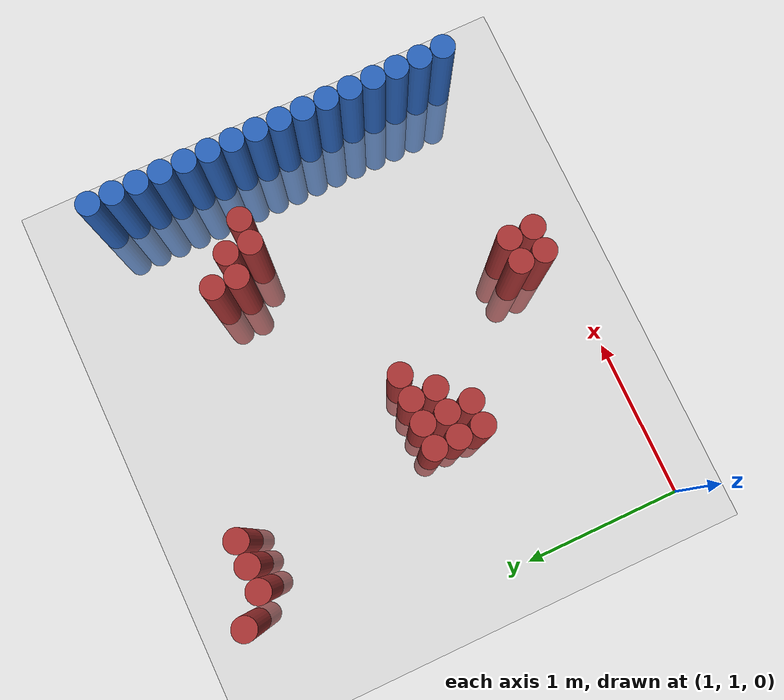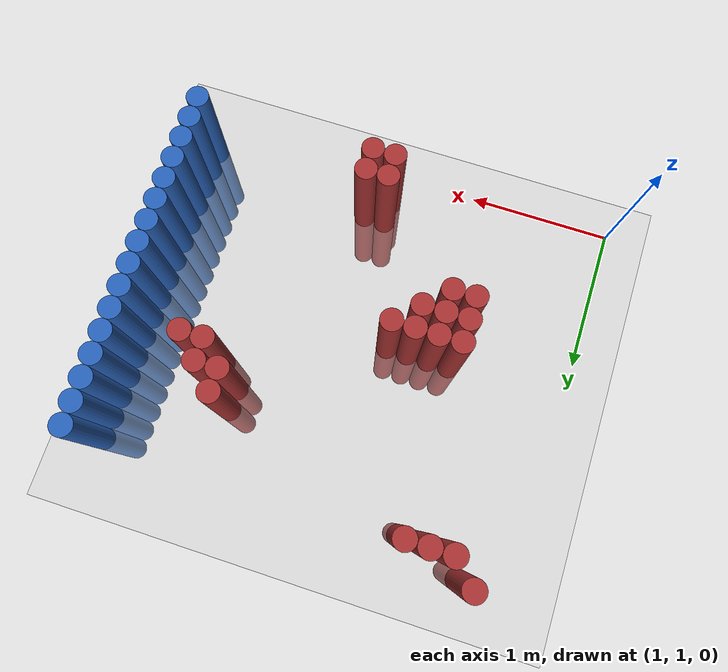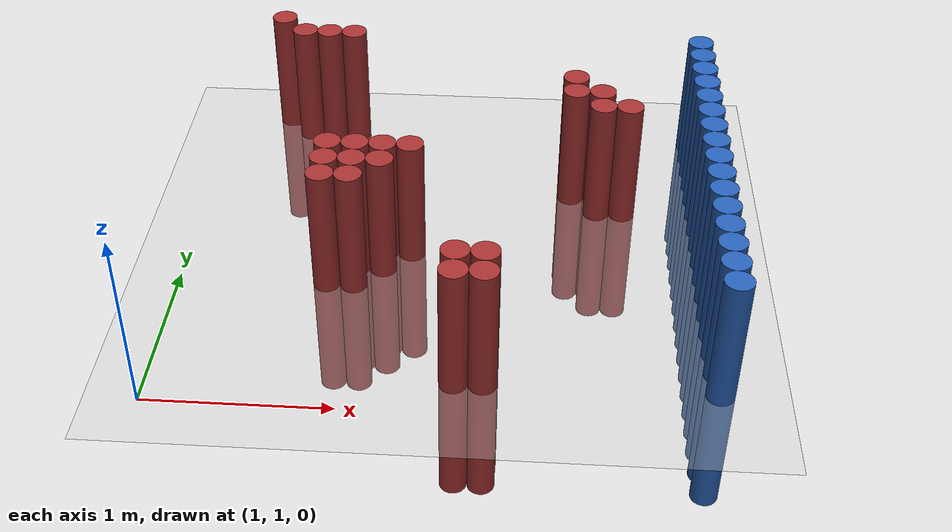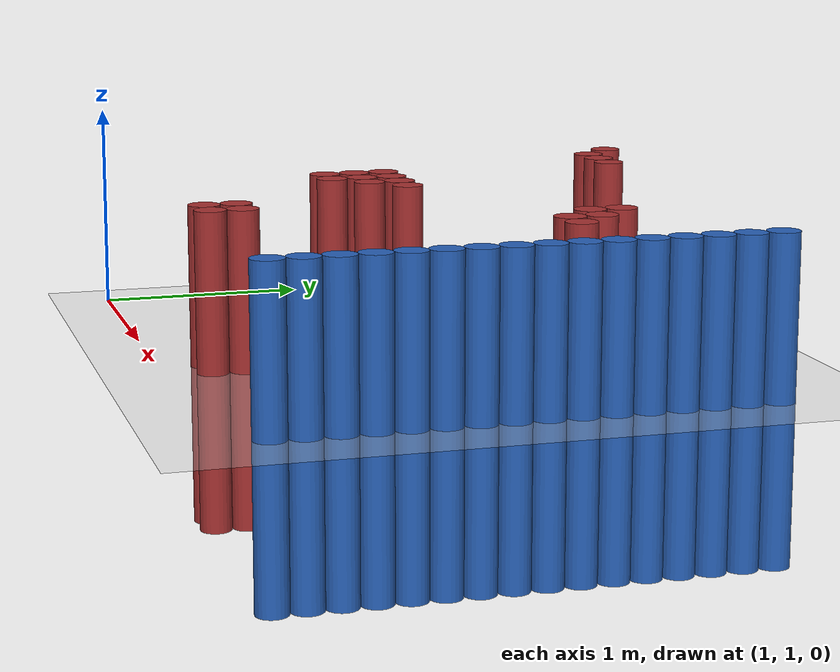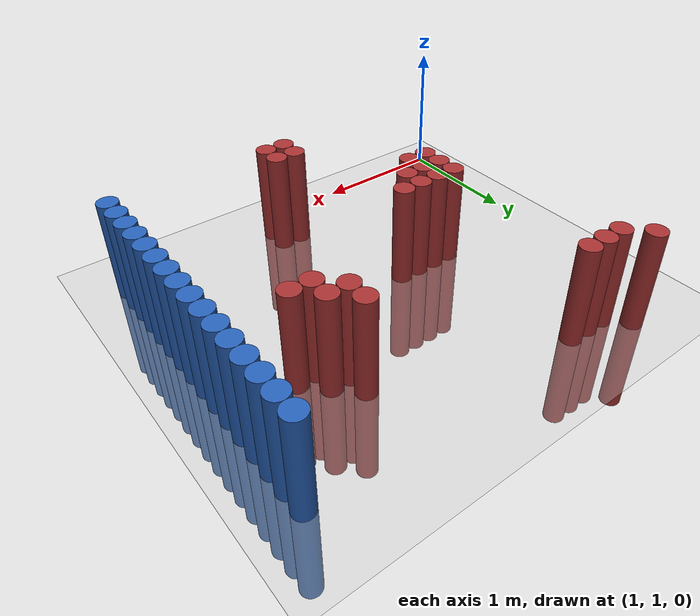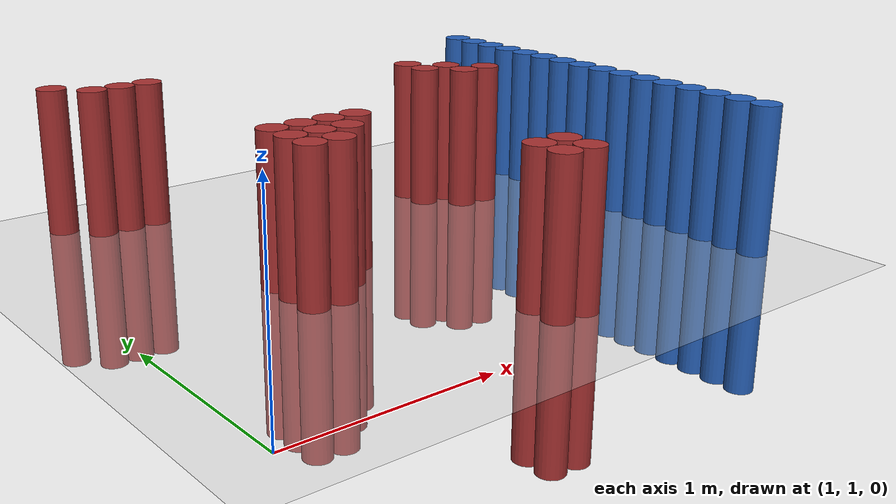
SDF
<sdf version="1.6">
 <world name="default">
  <model name="ground_plane">
   <static>1</static>
   <link name="link">
    <collision name="collision">
     <geometry><plane><normal>0 0 1</normal><size>100 100</size></plane></geometry>
     <surface><friction><ode><mu>100</mu><mu2>50</mu2></ode></friction></surface>
    </collision>
    <visual name="visual">
     <cast_shadows>0</cast_shadows>
     <geometry><plane><normal>0 0 1</normal><size>100 100</size></plane></geometry>
     <material>
      <script><uri>file://media/materials/scripts/gazebo.material</uri><name>Gazebo/Grey</name></script>
     </material>
    </visual>
   </link>
  </model>
  <model name="unit_cylinder_132">
   <static>1</static>
   <pose>3.925000 1.375000 0.000000 0.000000 0.000000 0.000000</pose>
   <link name="link">
    <inertial>
     <mass>1</mass>
     <inertia><ixx>0.145833</ixx><ixy>0</ixy><ixz>0</ixz><iyy>0.145833</iyy><iyz>0</iyz><izz>0.125</izz></inertia>
    </inertial>
    <collision name="collision">
     <geometry><cylinder><radius>0.075000</radius><length>1.5</length></cylinder></geometry>
    </collision>
    <visual name="visual">
     <geometry><cylinder><radius>0.075000</radius><length>1.5</length></cylinder></geometry>
     <material>
      <ambient>0.152000 0.379000 0.720000 1</ambient>
      <diffuse>0.152000 0.379000 0.720000 1</diffuse>
     </material>
     <material>
      <script><name>Gazebo/Grey</name><uri>file://media/materials/scripts/gazebo.material</uri></script>
     </material>
    </visual>
   </link>
  </model>
  <model name="unit_cylinder_134">
   <static>1</static>
   <pose>3.925000 1.525000 0.000000 0.000000 0.000000 0.000000</pose>
   <link name="link">
    <inertial>
     <mass>1</mass>
     <inertia><ixx>0.145833</ixx><ixy>0</ixy><ixz>0</ixz><iyy>0.145833</iyy><iyz>0</iyz><izz>0.125</izz></inertia>
    </inertial>
    <collision name="collision">
     <geometry><cylinder><radius>0.075000</radius><length>1.5</length></cylinder></geometry>
    </collision>
    <visual name="visual">
     <geometry><cylinder><radius>0.075000</radius><length>1.5</length></cylinder></geometry>
     <material>
      <ambient>0.152000 0.379000 0.720000 1</ambient>
      <diffuse>0.152000 0.379000 0.720000 1</diffuse>
     </material>
     <material>
      <script><name>Gazebo/Grey</name><uri>file://media/materials/scripts/gazebo.material</uri></script>
     </material>
    </visual>
   </link>
  </model>
  <model name="unit_cylinder_136">
   <static>1</static>
   <pose>3.925000 1.675000 0.000000 0.000000 0.000000 0.000000</pose>
   <link name="link">
    <inertial>
     <mass>1</mass>
     <inertia><ixx>0.145833</ixx><ixy>0</ixy><ixz>0</ixz><iyy>0.145833</iyy><iyz>0</iyz><izz>0.125</izz></inertia>
    </inertial>
    <collision name="collision">
     <geometry><cylinder><radius>0.075000</radius><length>1.5</length></cylinder></geometry>
    </collision>
    <visual name="visual">
     <geometry><cylinder><radius>0.075000</radius><length>1.5</length></cylinder></geometry>
     <material>
      <ambient>0.152000 0.379000 0.720000 1</ambient>
      <diffuse>0.152000 0.379000 0.720000 1</diffuse>
     </material>
     <material>
      <script><name>Gazebo/Grey</name><uri>file://media/materials/scripts/gazebo.material</uri></script>
     </material>
    </visual>
   </link>
  </model>
  <model name="unit_cylinder_138">
   <static>1</static>
   <pose>3.925000 1.825000 0.000000 0.000000 0.000000 0.000000</pose>
   <link name="link">
    <inertial>
     <mass>1</mass>
     <inertia><ixx>0.145833</ixx><ixy>0</ixy><ixz>0</ixz><iyy>0.145833</iyy><iyz>0</iyz><izz>0.125</izz></inertia>
    </inertial>
    <collision name="collision">
     <geometry><cylinder><radius>0.075000</radius><length>1.5</length></cylinder></geometry>
    </collision>
    <visual name="visual">
     <geometry><cylinder><radius>0.075000</radius><length>1.5</length></cylinder></geometry>
     <material>
      <ambient>0.152000 0.379000 0.720000 1</ambient>
      <diffuse>0.152000 0.379000 0.720000 1</diffuse>
     </material>
     <material>
      <script><name>Gazebo/Grey</name><uri>file://media/materials/scripts/gazebo.material</uri></script>
     </material>
    </visual>
   </link>
  </model>
  <model name="unit_cylinder_140">
   <static>1</static>
   <pose>3.925000 1.975000 0.000000 0.000000 0.000000 0.000000</pose>
   <link name="link">
    <inertial>
     <mass>1</mass>
     <inertia><ixx>0.145833</ixx><ixy>0</ixy><ixz>0</ixz><iyy>0.145833</iyy><iyz>0</iyz><izz>0.125</izz></inertia>
    </inertial>
    <collision name="collision">
     <geometry><cylinder><radius>0.075000</radius><length>1.5</length></cylinder></geometry>
    </collision>
    <visual name="visual">
     <geometry><cylinder><radius>0.075000</radius><length>1.5</length></cylinder></geometry>
     <material>
      <ambient>0.152000 0.379000 0.720000 1</ambient>
      <diffuse>0.152000 0.379000 0.720000 1</diffuse>
     </material>
     <material>
      <script><name>Gazebo/Grey</name><uri>file://media/materials/scripts/gazebo.material</uri></script>
     </material>
    </visual>
   </link>
  </model>
  <model name="unit_cylinder_142">
   <static>1</static>
   <pose>3.925000 2.125000 0.000000 0.000000 0.000000 0.000000</pose>
   <link name="link">
    <inertial>
     <mass>1</mass>
     <inertia><ixx>0.145833</ixx><ixy>0</ixy><ixz>0</ixz><iyy>0.145833</iyy><iyz>0</iyz><izz>0.125</izz></inertia>
    </inertial>
    <collision name="collision">
     <geometry><cylinder><radius>0.075000</radius><length>1.5</length></cylinder></geometry>
    </collision>
    <visual name="visual">
     <geometry><cylinder><radius>0.075000</radius><length>1.5</length></cylinder></geometry>
     <material>
      <ambient>0.152000 0.379000 0.720000 1</ambient>
      <diffuse>0.152000 0.379000 0.720000 1</diffuse>
     </material>
     <material>
      <script><name>Gazebo/Grey</name><uri>file://media/materials/scripts/gazebo.material</uri></script>
     </material>
    </visual>
   </link>
  </model>
  <model name="unit_cylinder_144">
   <static>1</static>
   <pose>3.925000 2.275000 0.000000 0.000000 0.000000 0.000000</pose>
   <link name="link">
    <inertial>
     <mass>1</mass>
     <inertia><ixx>0.145833</ixx><ixy>0</ixy><ixz>0</ixz><iyy>0.145833</iyy><iyz>0</iyz><izz>0.125</izz></inertia>
    </inertial>
    <collision name="collision">
     <geometry><cylinder><radius>0.075000</radius><length>1.5</length></cylinder></geometry>
    </collision>
    <visual name="visual">
     <geometry><cylinder><radius>0.075000</radius><length>1.5</length></cylinder></geometry>
     <material>
      <ambient>0.152000 0.379000 0.720000 1</ambient>
      <diffuse>0.152000 0.379000 0.720000 1</diffuse>
     </material>
     <material>
      <script><name>Gazebo/Grey</name><uri>file://media/materials/scripts/gazebo.material</uri></script>
     </material>
    </visual>
   </link>
  </model>
  <model name="unit_cylinder_146">
   <static>1</static>
   <pose>3.925000 2.425000 0.000000 0.000000 0.000000 0.000000</pose>
   <link name="link">
    <inertial>
     <mass>1</mass>
     <inertia><ixx>0.145833</ixx><ixy>0</ixy><ixz>0</ixz><iyy>0.145833</iyy><iyz>0</iyz><izz>0.125</izz></inertia>
    </inertial>
    <collision name="collision">
     <geometry><cylinder><radius>0.075000</radius><length>1.5</length></cylinder></geometry>
    </collision>
    <visual name="visual">
     <geometry><cylinder><radius>0.075000</radius><length>1.5</length></cylinder></geometry>
     <material>
      <ambient>0.152000 0.379000 0.720000 1</ambient>
      <diffuse>0.152000 0.379000 0.720000 1</diffuse>
     </material>
     <material>
      <script><name>Gazebo/Grey</name><uri>file://media/materials/scripts/gazebo.material</uri></script>
     </material>
    </visual>
   </link>
  </model>
  <model name="unit_cylinder_148">
   <static>1</static>
   <pose>3.925000 2.575000 0.000000 0.000000 0.000000 0.000000</pose>
   <link name="link">
    <inertial>
     <mass>1</mass>
     <inertia><ixx>0.145833</ixx><ixy>0</ixy><ixz>0</ixz><iyy>0.145833</iyy><iyz>0</iyz><izz>0.125</izz></inertia>
    </inertial>
    <collision name="collision">
     <geometry><cylinder><radius>0.075000</radius><length>1.5</length></cylinder></geometry>
    </collision>
    <visual name="visual">
     <geometry><cylinder><radius>0.075000</radius><length>1.5</length></cylinder></geometry>
     <material>
      <ambient>0.152000 0.379000 0.720000 1</ambient>
      <diffuse>0.152000 0.379000 0.720000 1</diffuse>
     </material>
     <material>
      <script><name>Gazebo/Grey</name><uri>file://media/materials/scripts/gazebo.material</uri></script>
     </material>
    </visual>
   </link>
  </model>
  <model name="unit_cylinder_150">
   <static>1</static>
   <pose>3.925000 2.725000 0.000000 0.000000 0.000000 0.000000</pose>
   <link name="link">
    <inertial>
     <mass>1</mass>
     <inertia><ixx>0.145833</ixx><ixy>0</ixy><ixz>0</ixz><iyy>0.145833</iyy><iyz>0</iyz><izz>0.125</izz></inertia>
    </inertial>
    <collision name="collision">
     <geometry><cylinder><radius>0.075000</radius><length>1.5</length></cylinder></geometry>
    </collision>
    <visual name="visual">
     <geometry><cylinder><radius>0.075000</radius><length>1.5</length></cylinder></geometry>
     <material>
      <ambient>0.152000 0.379000 0.720000 1</ambient>
      <diffuse>0.152000 0.379000 0.720000 1</diffuse>
     </material>
     <material>
      <script><name>Gazebo/Grey</name><uri>file://media/materials/scripts/gazebo.material</uri></script>
     </material>
    </visual>
   </link>
  </model>
  <model name="unit_cylinder_152">
   <static>1</static>
   <pose>3.925000 2.875000 0.000000 0.000000 0.000000 0.000000</pose>
   <link name="link">
    <inertial>
     <mass>1</mass>
     <inertia><ixx>0.145833</ixx><ixy>0</ixy><ixz>0</ixz><iyy>0.145833</iyy><iyz>0</iyz><izz>0.125</izz></inertia>
    </inertial>
    <collision name="collision">
     <geometry><cylinder><radius>0.075000</radius><length>1.5</length></cylinder></geometry>
    </collision>
    <visual name="visual">
     <geometry><cylinder><radius>0.075000</radius><length>1.5</length></cylinder></geometry>
     <material>
      <ambient>0.152000 0.379000 0.720000 1</ambient>
      <diffuse>0.152000 0.379000 0.720000 1</diffuse>
     </material>
     <material>
      <script><name>Gazebo/Grey</name><uri>file://media/materials/scripts/gazebo.material</uri></script>
     </material>
    </visual>
   </link>
  </model>
  <model name="unit_cylinder_154">
   <static>1</static>
   <pose>3.925000 3.025000 0.000000 0.000000 0.000000 0.000000</pose>
   <link name="link">
    <inertial>
     <mass>1</mass>
     <inertia><ixx>0.145833</ixx><ixy>0</ixy><ixz>0</ixz><iyy>0.145833</iyy><iyz>0</iyz><izz>0.125</izz></inertia>
    </inertial>
    <collision name="collision">
     <geometry><cylinder><radius>0.075000</radius><length>1.5</length></cylinder></geometry>
    </collision>
    <visual name="visual">
     <geometry><cylinder><radius>0.075000</radius><length>1.5</length></cylinder></geometry>
     <material>
      <ambient>0.152000 0.379000 0.720000 1</ambient>
      <diffuse>0.152000 0.379000 0.720000 1</diffuse>
     </material>
     <material>
      <script><name>Gazebo/Grey</name><uri>file://media/materials/scripts/gazebo.material</uri></script>
     </material>
    </visual>
   </link>
  </model>
  <model name="unit_cylinder_156">
   <static>1</static>
   <pose>3.925000 3.175000 0.000000 0.000000 0.000000 0.000000</pose>
   <link name="link">
    <inertial>
     <mass>1</mass>
     <inertia><ixx>0.145833</ixx><ixy>0</ixy><ixz>0</ixz><iyy>0.145833</iyy><iyz>0</iyz><izz>0.125</izz></inertia>
    </inertial>
    <collision name="collision">
     <geometry><cylinder><radius>0.075000</radius><length>1.5</length></cylinder></geometry>
    </collision>
    <visual name="visual">
     <geometry><cylinder><radius>0.075000</radius><length>1.5</length></cylinder></geometry>
     <material>
      <ambient>0.152000 0.379000 0.720000 1</ambient>
      <diffuse>0.152000 0.379000 0.720000 1</diffuse>
     </material>
     <material>
      <script><name>Gazebo/Grey</name><uri>file://media/materials/scripts/gazebo.material</uri></script>
     </material>
    </visual>
   </link>
  </model>
  <model name="unit_cylinder_158">
   <static>1</static>
   <pose>3.925000 3.325000 0.000000 0.000000 0.000000 0.000000</pose>
   <link name="link">
    <inertial>
     <mass>1</mass>
     <inertia><ixx>0.145833</ixx><ixy>0</ixy><ixz>0</ixz><iyy>0.145833</iyy><iyz>0</iyz><izz>0.125</izz></inertia>
    </inertial>
    <collision name="collision">
     <geometry><cylinder><radius>0.075000</radius><length>1.5</length></cylinder></geometry>
    </collision>
    <visual name="visual">
     <geometry><cylinder><radius>0.075000</radius><length>1.5</length></cylinder></geometry>
     <material>
      <ambient>0.152000 0.379000 0.720000 1</ambient>
      <diffuse>0.152000 0.379000 0.720000 1</diffuse>
     </material>
     <material>
      <script><name>Gazebo/Grey</name><uri>file://media/materials/scripts/gazebo.material</uri></script>
     </material>
    </visual>
   </link>
  </model>
  <model name="unit_cylinder_160">
   <static>1</static>
   <pose>3.925000 3.475000 0.000000 0.000000 0.000000 0.000000</pose>
   <link name="link">
    <inertial>
     <mass>1</mass>
     <inertia><ixx>0.145833</ixx><ixy>0</ixy><ixz>0</ixz><iyy>0.145833</iyy><iyz>0</iyz><izz>0.125</izz></inertia>
    </inertial>
    <collision name="collision">
     <geometry><cylinder><radius>0.075000</radius><length>1.5</length></cylinder></geometry>
    </collision>
    <visual name="visual">
     <geometry><cylinder><radius>0.075000</radius><length>1.5</length></cylinder></geometry>
     <material>
      <ambient>0.152000 0.379000 0.720000 1</ambient>
      <diffuse>0.152000 0.379000 0.720000 1</diffuse>
     </material>
     <material>
      <script><name>Gazebo/Grey</name><uri>file://media/materials/scripts/gazebo.material</uri></script>
     </material>
    </visual>
   </link>
  </model>
  <model name="unit_cylinder_420">
   <static>1</static>
   <pose>1.375000 3.625000 0.000000 0.000000 0.000000 0.000000</pose>
   <link name="link">
    <inertial>
     <mass>1</mass>
     <inertia><ixx>0.145833</ixx><ixy>0</ixy><ixz>0</ixz><iyy>0.145833</iyy><iyz>0</iyz><izz>0.125</izz></inertia>
    </inertial>
    <collision name="collision">
     <geometry><cylinder><radius>0.075000</radius><length>1.5</length></cylinder></geometry>
    </collision>
    <visual name="visual">
     <geometry><cylinder><radius>0.075000</radius><length>1.5</length></cylinder></geometry>
     <material>
      <ambient>0.648000 0.192000 0.192000 1</ambient>
      <diffuse>0.648000 0.192000 0.192000 1</diffuse>
     </material>
     <material>
      <script><name>Gazebo/Grey</name><uri>file://media/materials/scripts/gazebo.material</uri></script>
     </material>
    </visual>
   </link>
  </model>
  <model name="unit_cylinder_423">
   <static>1</static>
   <pose>1.525000 3.475000 0.000000 0.000000 0.000000 0.000000</pose>
   <link name="link">
    <inertial>
     <mass>1</mass>
     <inertia><ixx>0.145833</ixx><ixy>0</ixy><ixz>0</ixz><iyy>0.145833</iyy><iyz>0</iyz><izz>0.125</izz></inertia>
    </inertial>
    <collision name="collision">
     <geometry><cylinder><radius>0.075000</radius><length>1.5</length></cylinder></geometry>
    </collision>
    <visual name="visual">
     <geometry><cylinder><radius>0.075000</radius><length>1.5</length></cylinder></geometry>
     <material>
      <ambient>0.648000 0.192000 0.192000 1</ambient>
      <diffuse>0.648000 0.192000 0.192000 1</diffuse>
     </material>
     <material>
      <script><name>Gazebo/Grey</name><uri>file://media/materials/scripts/gazebo.material</uri></script>
     </material>
    </visual>
   </link>
  </model>
  <model name="unit_cylinder_426">
   <static>1</static>
   <pose>1.675000 3.475000 0.000000 0.000000 0.000000 0.000000</pose>
   <link name="link">
    <inertial>
     <mass>1</mass>
     <inertia><ixx>0.145833</ixx><ixy>0</ixy><ixz>0</ixz><iyy>0.145833</iyy><iyz>0</iyz><izz>0.125</izz></inertia>
    </inertial>
    <collision name="collision">
     <geometry><cylinder><radius>0.075000</radius><length>1.5</length></cylinder></geometry>
    </collision>
    <visual name="visual">
     <geometry><cylinder><radius>0.075000</radius><length>1.5</length></cylinder></geometry>
     <material>
      <ambient>0.648000 0.192000 0.192000 1</ambient>
      <diffuse>0.648000 0.192000 0.192000 1</diffuse>
     </material>
     <material>
      <script><name>Gazebo/Grey</name><uri>file://media/materials/scripts/gazebo.material</uri></script>
     </material>
    </visual>
   </link>
  </model>
  <model name="unit_cylinder_429">
   <static>1</static>
   <pose>1.825000 1.975000 0.000000 0.000000 0.000000 0.000000</pose>
   <link name="link">
    <inertial>
     <mass>1</mass>
     <inertia><ixx>0.145833</ixx><ixy>0</ixy><ixz>0</ixz><iyy>0.145833</iyy><iyz>0</iyz><izz>0.125</izz></inertia>
    </inertial>
    <collision name="collision">
     <geometry><cylinder><radius>0.075000</radius><length>1.5</length></cylinder></geometry>
    </collision>
    <visual name="visual">
     <geometry><cylinder><radius>0.075000</radius><length>1.5</length></cylinder></geometry>
     <material>
      <ambient>0.648000 0.192000 0.192000 1</ambient>
      <diffuse>0.648000 0.192000 0.192000 1</diffuse>
     </material>
     <material>
      <script><name>Gazebo/Grey</name><uri>file://media/materials/scripts/gazebo.material</uri></script>
     </material>
    </visual>
   </link>
  </model>
  <model name="unit_cylinder_430">
   <static>1</static>
   <pose>1.825000 2.125000 0.000000 0.000000 0.000000 0.000000</pose>
   <link name="link">
    <inertial>
     <mass>1</mass>
     <inertia><ixx>0.145833</ixx><ixy>0</ixy><ixz>0</ixz><iyy>0.145833</iyy><iyz>0</iyz><izz>0.125</izz></inertia>
    </inertial>
    <collision name="collision">
     <geometry><cylinder><radius>0.075000</radius><length>1.5</length></cylinder></geometry>
    </collision>
    <visual name="visual">
     <geometry><cylinder><radius>0.075000</radius><length>1.5</length></cylinder></geometry>
     <material>
      <ambient>0.648000 0.192000 0.192000 1</ambient>
      <diffuse>0.648000 0.192000 0.192000 1</diffuse>
     </material>
     <material>
      <script><name>Gazebo/Grey</name><uri>file://media/materials/scripts/gazebo.material</uri></script>
     </material>
    </visual>
   </link>
  </model>
  <model name="unit_cylinder_431">
   <static>1</static>
   <pose>1.825000 2.275000 0.000000 0.000000 0.000000 0.000000</pose>
   <link name="link">
    <inertial>
     <mass>1</mass>
     <inertia><ixx>0.145833</ixx><ixy>0</ixy><ixz>0</ixz><iyy>0.145833</iyy><iyz>0</iyz><izz>0.125</izz></inertia>
    </inertial>
    <collision name="collision">
     <geometry><cylinder><radius>0.075000</radius><length>1.5</length></cylinder></geometry>
    </collision>
    <visual name="visual">
     <geometry><cylinder><radius>0.075000</radius><length>1.5</length></cylinder></geometry>
     <material>
      <ambient>0.648000 0.192000 0.192000 1</ambient>
      <diffuse>0.648000 0.192000 0.192000 1</diffuse>
     </material>
     <material>
      <script><name>Gazebo/Grey</name><uri>file://media/materials/scripts/gazebo.material</uri></script>
     </material>
    </visual>
   </link>
  </model>
  <model name="unit_cylinder_432">
   <static>1</static>
   <pose>1.825000 3.475000 0.000000 0.000000 0.000000 0.000000</pose>
   <link name="link">
    <inertial>
     <mass>1</mass>
     <inertia><ixx>0.145833</ixx><ixy>0</ixy><ixz>0</ixz><iyy>0.145833</iyy><iyz>0</iyz><izz>0.125</izz></inertia>
    </inertial>
    <collision name="collision">
     <geometry><cylinder><radius>0.075000</radius><length>1.5</length></cylinder></geometry>
    </collision>
    <visual name="visual">
     <geometry><cylinder><radius>0.075000</radius><length>1.5</length></cylinder></geometry>
     <material>
      <ambient>0.648000 0.192000 0.192000 1</ambient>
      <diffuse>0.648000 0.192000 0.192000 1</diffuse>
     </material>
     <material>
      <script><name>Gazebo/Grey</name><uri>file://media/materials/scripts/gazebo.material</uri></script>
     </material>
    </visual>
   </link>
  </model>
  <model name="unit_cylinder_433">
   <static>1</static>
   <pose>1.975000 1.975000 0.000000 0.000000 0.000000 0.000000</pose>
   <link name="link">
    <inertial>
     <mass>1</mass>
     <inertia><ixx>0.145833</ixx><ixy>0</ixy><ixz>0</ixz><iyy>0.145833</iyy><iyz>0</iyz><izz>0.125</izz></inertia>
    </inertial>
    <collision name="collision">
     <geometry><cylinder><radius>0.075000</radius><length>1.5</length></cylinder></geometry>
    </collision>
    <visual name="visual">
     <geometry><cylinder><radius>0.075000</radius><length>1.5</length></cylinder></geometry>
     <material>
      <ambient>0.648000 0.192000 0.192000 1</ambient>
      <diffuse>0.648000 0.192000 0.192000 1</diffuse>
     </material>
     <material>
      <script><name>Gazebo/Grey</name><uri>file://media/materials/scripts/gazebo.material</uri></script>
     </material>
    </visual>
   </link>
  </model>
  <model name="unit_cylinder_434">
   <static>1</static>
   <pose>1.975000 2.125000 0.000000 0.000000 0.000000 0.000000</pose>
   <link name="link">
    <inertial>
     <mass>1</mass>
     <inertia><ixx>0.145833</ixx><ixy>0</ixy><ixz>0</ixz><iyy>0.145833</iyy><iyz>0</iyz><izz>0.125</izz></inertia>
    </inertial>
    <collision name="collision">
     <geometry><cylinder><radius>0.075000</radius><length>1.5</length></cylinder></geometry>
    </collision>
    <visual name="visual">
     <geometry><cylinder><radius>0.075000</radius><length>1.5</length></cylinder></geometry>
     <material>
      <ambient>0.648000 0.192000 0.192000 1</ambient>
      <diffuse>0.648000 0.192000 0.192000 1</diffuse>
     </material>
     <material>
      <script><name>Gazebo/Grey</name><uri>file://media/materials/scripts/gazebo.material</uri></script>
     </material>
    </visual>
   </link>
  </model>
  <model name="unit_cylinder_435">
   <static>1</static>
   <pose>1.975000 2.275000 0.000000 0.000000 0.000000 0.000000</pose>
   <link name="link">
    <inertial>
     <mass>1</mass>
     <inertia><ixx>0.145833</ixx><ixy>0</ixy><ixz>0</ixz><iyy>0.145833</iyy><iyz>0</iyz><izz>0.125</izz></inertia>
    </inertial>
    <collision name="collision">
     <geometry><cylinder><radius>0.075000</radius><length>1.5</length></cylinder></geometry>
    </collision>
    <visual name="visual">
     <geometry><cylinder><radius>0.075000</radius><length>1.5</length></cylinder></geometry>
     <material>
      <ambient>0.648000 0.192000 0.192000 1</ambient>
      <diffuse>0.648000 0.192000 0.192000 1</diffuse>
     </material>
     <material>
      <script><name>Gazebo/Grey</name><uri>file://media/materials/scripts/gazebo.material</uri></script>
     </material>
    </visual>
   </link>
  </model>
  <model name="unit_cylinder_436">
   <static>1</static>
   <pose>2.125000 2.125000 0.000000 0.000000 0.000000 0.000000</pose>
   <link name="link">
    <inertial>
     <mass>1</mass>
     <inertia><ixx>0.145833</ixx><ixy>0</ixy><ixz>0</ixz><iyy>0.145833</iyy><iyz>0</iyz><izz>0.125</izz></inertia>
    </inertial>
    <collision name="collision">
     <geometry><cylinder><radius>0.075000</radius><length>1.5</length></cylinder></geometry>
    </collision>
    <visual name="visual">
     <geometry><cylinder><radius>0.075000</radius><length>1.5</length></cylinder></geometry>
     <material>
      <ambient>0.648000 0.192000 0.192000 1</ambient>
      <diffuse>0.648000 0.192000 0.192000 1</diffuse>
     </material>
     <material>
      <script><name>Gazebo/Grey</name><uri>file://media/materials/scripts/gazebo.material</uri></script>
     </material>
    </visual>
   </link>
  </model>
  <model name="unit_cylinder_437">
   <static>1</static>
   <pose>2.125000 2.275000 0.000000 0.000000 0.000000 0.000000</pose>
   <link name="link">
    <inertial>
     <mass>1</mass>
     <inertia><ixx>0.145833</ixx><ixy>0</ixy><ixz>0</ixz><iyy>0.145833</iyy><iyz>0</iyz><izz>0.125</izz></inertia>
    </inertial>
    <collision name="collision">
     <geometry><cylinder><radius>0.075000</radius><length>1.5</length></cylinder></geometry>
    </collision>
    <visual name="visual">
     <geometry><cylinder><radius>0.075000</radius><length>1.5</length></cylinder></geometry>
     <material>
      <ambient>0.648000 0.192000 0.192000 1</ambient>
      <diffuse>0.648000 0.192000 0.192000 1</diffuse>
     </material>
     <material>
      <script><name>Gazebo/Grey</name><uri>file://media/materials/scripts/gazebo.material</uri></script>
     </material>
    </visual>
   </link>
  </model>
  <model name="unit_cylinder_438">
   <static>1</static>
   <pose>2.275000 2.275000 0.000000 0.000000 0.000000 0.000000</pose>
   <link name="link">
    <inertial>
     <mass>1</mass>
     <inertia><ixx>0.145833</ixx><ixy>0</ixy><ixz>0</ixz><iyy>0.145833</iyy><iyz>0</iyz><izz>0.125</izz></inertia>
    </inertial>
    <collision name="collision">
     <geometry><cylinder><radius>0.075000</radius><length>1.5</length></cylinder></geometry>
    </collision>
    <visual name="visual">
     <geometry><cylinder><radius>0.075000</radius><length>1.5</length></cylinder></geometry>
     <material>
      <ambient>0.648000 0.192000 0.192000 1</ambient>
      <diffuse>0.648000 0.192000 0.192000 1</diffuse>
     </material>
     <material>
      <script><name>Gazebo/Grey</name><uri>file://media/materials/scripts/gazebo.material</uri></script>
     </material>
    </visual>
   </link>
  </model>
  <model name="unit_cylinder_441">
   <static>1</static>
   <pose>2.575000 1.225000 0.000000 0.000000 0.000000 0.000000</pose>
   <link name="link">
    <inertial>
     <mass>1</mass>
     <inertia><ixx>0.145833</ixx><ixy>0</ixy><ixz>0</ixz><iyy>0.145833</iyy><iyz>0</iyz><izz>0.125</izz></inertia>
    </inertial>
    <collision name="collision">
     <geometry><cylinder><radius>0.075000</radius><length>1.5</length></cylinder></geometry>
    </collision>
    <visual name="visual">
     <geometry><cylinder><radius>0.075000</radius><length>1.5</length></cylinder></geometry>
     <material>
      <ambient>0.648000 0.192000 0.192000 1</ambient>
      <diffuse>0.648000 0.192000 0.192000 1</diffuse>
     </material>
     <material>
      <script><name>Gazebo/Grey</name><uri>file://media/materials/scripts/gazebo.material</uri></script>
     </material>
    </visual>
   </link>
  </model>
  <model name="unit_cylinder_442">
   <static>1</static>
   <pose>2.575000 1.375000 0.000000 0.000000 0.000000 0.000000</pose>
   <link name="link">
    <inertial>
     <mass>1</mass>
     <inertia><ixx>0.145833</ixx><ixy>0</ixy><ixz>0</ixz><iyy>0.145833</iyy><iyz>0</iyz><izz>0.125</izz></inertia>
    </inertial>
    <collision name="collision">
     <geometry><cylinder><radius>0.075000</radius><length>1.5</length></cylinder></geometry>
    </collision>
    <visual name="visual">
     <geometry><cylinder><radius>0.075000</radius><length>1.5</length></cylinder></geometry>
     <material>
      <ambient>0.648000 0.192000 0.192000 1</ambient>
      <diffuse>0.648000 0.192000 0.192000 1</diffuse>
     </material>
     <material>
      <script><name>Gazebo/Grey</name><uri>file://media/materials/scripts/gazebo.material</uri></script>
     </material>
    </visual>
   </link>
  </model>
  <model name="unit_cylinder_444">
   <static>1</static>
   <pose>2.725000 1.225000 0.000000 0.000000 0.000000 0.000000</pose>
   <link name="link">
    <inertial>
     <mass>1</mass>
     <inertia><ixx>0.145833</ixx><ixy>0</ixy><ixz>0</ixz><iyy>0.145833</iyy><iyz>0</iyz><izz>0.125</izz></inertia>
    </inertial>
    <collision name="collision">
     <geometry><cylinder><radius>0.075000</radius><length>1.5</length></cylinder></geometry>
    </collision>
    <visual name="visual">
     <geometry><cylinder><radius>0.075000</radius><length>1.5</length></cylinder></geometry>
     <material>
      <ambient>0.648000 0.192000 0.192000 1</ambient>
      <diffuse>0.648000 0.192000 0.192000 1</diffuse>
     </material>
     <material>
      <script><name>Gazebo/Grey</name><uri>file://media/materials/scripts/gazebo.material</uri></script>
     </material>
    </visual>
   </link>
  </model>
  <model name="unit_cylinder_445">
   <static>1</static>
   <pose>2.725000 1.375000 0.000000 0.000000 0.000000 0.000000</pose>
   <link name="link">
    <inertial>
     <mass>1</mass>
     <inertia><ixx>0.145833</ixx><ixy>0</ixy><ixz>0</ixz><iyy>0.145833</iyy><iyz>0</iyz><izz>0.125</izz></inertia>
    </inertial>
    <collision name="collision">
     <geometry><cylinder><radius>0.075000</radius><length>1.5</length></cylinder></geometry>
    </collision>
    <visual name="visual">
     <geometry><cylinder><radius>0.075000</radius><length>1.5</length></cylinder></geometry>
     <material>
      <ambient>0.648000 0.192000 0.192000 1</ambient>
      <diffuse>0.648000 0.192000 0.192000 1</diffuse>
     </material>
     <material>
      <script><name>Gazebo/Grey</name><uri>file://media/materials/scripts/gazebo.material</uri></script>
     </material>
    </visual>
   </link>
  </model>
  <model name="unit_cylinder_459">
   <static>1</static>
   <pose>3.175000 2.875000 0.000000 0.000000 0.000000 0.000000</pose>
   <link name="link">
    <inertial>
     <mass>1</mass>
     <inertia><ixx>0.145833</ixx><ixy>0</ixy><ixz>0</ixz><iyy>0.145833</iyy><iyz>0</iyz><izz>0.125</izz></inertia>
    </inertial>
    <collision name="collision">
     <geometry><cylinder><radius>0.075000</radius><length>1.5</length></cylinder></geometry>
    </collision>
    <visual name="visual">
     <geometry><cylinder><radius>0.075000</radius><length>1.5</length></cylinder></geometry>
     <material>
      <ambient>0.648000 0.192000 0.192000 1</ambient>
      <diffuse>0.648000 0.192000 0.192000 1</diffuse>
     </material>
     <material>
      <script><name>Gazebo/Grey</name><uri>file://media/materials/scripts/gazebo.material</uri></script>
     </material>
    </visual>
   </link>
  </model>
  <model name="unit_cylinder_460">
   <static>1</static>
   <pose>3.175000 3.025000 0.000000 0.000000 0.000000 0.000000</pose>
   <link name="link">
    <inertial>
     <mass>1</mass>
     <inertia><ixx>0.145833</ixx><ixy>0</ixy><ixz>0</ixz><iyy>0.145833</iyy><iyz>0</iyz><izz>0.125</izz></inertia>
    </inertial>
    <collision name="collision">
     <geometry><cylinder><radius>0.075000</radius><length>1.5</length></cylinder></geometry>
    </collision>
    <visual name="visual">
     <geometry><cylinder><radius>0.075000</radius><length>1.5</length></cylinder></geometry>
     <material>
      <ambient>0.648000 0.192000 0.192000 1</ambient>
      <diffuse>0.648000 0.192000 0.192000 1</diffuse>
     </material>
     <material>
      <script><name>Gazebo/Grey</name><uri>file://media/materials/scripts/gazebo.material</uri></script>
     </material>
    </visual>
   </link>
  </model>
  <model name="unit_cylinder_464">
   <static>1</static>
   <pose>3.325000 2.725000 0.000000 0.000000 0.000000 0.000000</pose>
   <link name="link">
    <inertial>
     <mass>1</mass>
     <inertia><ixx>0.145833</ixx><ixy>0</ixy><ixz>0</ixz><iyy>0.145833</iyy><iyz>0</iyz><izz>0.125</izz></inertia>
    </inertial>
    <collision name="collision">
     <geometry><cylinder><radius>0.075000</radius><length>1.5</length></cylinder></geometry>
    </collision>
    <visual name="visual">
     <geometry><cylinder><radius>0.075000</radius><length>1.5</length></cylinder></geometry>
     <material>
      <ambient>0.648000 0.192000 0.192000 1</ambient>
      <diffuse>0.648000 0.192000 0.192000 1</diffuse>
     </material>
     <material>
      <script><name>Gazebo/Grey</name><uri>file://media/materials/scripts/gazebo.material</uri></script>
     </material>
    </visual>
   </link>
  </model>
  <model name="unit_cylinder_465">
   <static>1</static>
   <pose>3.325000 2.875000 0.000000 0.000000 0.000000 0.000000</pose>
   <link name="link">
    <inertial>
     <mass>1</mass>
     <inertia><ixx>0.145833</ixx><ixy>0</ixy><ixz>0</ixz><iyy>0.145833</iyy><iyz>0</iyz><izz>0.125</izz></inertia>
    </inertial>
    <collision name="collision">
     <geometry><cylinder><radius>0.075000</radius><length>1.5</length></cylinder></geometry>
    </collision>
    <visual name="visual">
     <geometry><cylinder><radius>0.075000</radius><length>1.5</length></cylinder></geometry>
     <material>
      <ambient>0.648000 0.192000 0.192000 1</ambient>
      <diffuse>0.648000 0.192000 0.192000 1</diffuse>
     </material>
     <material>
      <script><name>Gazebo/Grey</name><uri>file://media/materials/scripts/gazebo.material</uri></script>
     </material>
    </visual>
   </link>
  </model>
  <model name="unit_cylinder_468">
   <static>1</static>
   <pose>3.475000 2.725000 0.000000 0.000000 0.000000 0.000000</pose>
   <link name="link">
    <inertial>
     <mass>1</mass>
     <inertia><ixx>0.145833</ixx><ixy>0</ixy><ixz>0</ixz><iyy>0.145833</iyy><iyz>0</iyz><izz>0.125</izz></inertia>
    </inertial>
    <collision name="collision">
     <geometry><cylinder><radius>0.075000</radius><length>1.5</length></cylinder></geometry>
    </collision>
    <visual name="visual">
     <geometry><cylinder><radius>0.075000</radius><length>1.5</length></cylinder></geometry>
     <material>
      <ambient>0.648000 0.192000 0.192000 1</ambient>
      <diffuse>0.648000 0.192000 0.192000 1</diffuse>
     </material>
     <material>
      <script><name>Gazebo/Grey</name><uri>file://media/materials/scripts/gazebo.material</uri></script>
     </material>
    </visual>
   </link>
  </model>
  <model name="unit_cylinder_506">
   <static>1</static>
   <pose>3.925000 1.225000 0.000000 0.000000 0.000000 0.000000</pose>
   <link name="link">
    <inertial>
     <mass>1</mass>
     <inertia><ixx>0.145833</ixx><ixy>0</ixy><ixz>0</ixz><iyy>0.145833</iyy><iyz>0</iyz><izz>0.125</izz></inertia>
    </inertial>
    <collision name="collision">
     <geometry><cylinder><radius>0.075000</radius><length>1.5</length></cylinder></geometry>
    </collision>
    <visual name="visual">
     <geometry><cylinder><radius>0.075000</radius><length>1.5</length></cylinder></geometry>
     <material>
      <ambient>0.152000 0.379000 0.720000 1</ambient>
      <diffuse>0.152000 0.379000 0.720000 1</diffuse>
     </material>
     <material>
      <script><name>Gazebo/Grey</name><uri>file://media/materials/scripts/gazebo.material</uri></script>
     </material>
    </visual>
   </link>
  </model>
  <model name="unit_cylinder_507">
   <static>1</static>
   <pose>3.925000 1.375000 0.000000 0.000000 0.000000 0.000000</pose>
   <link name="link">
    <inertial>
     <mass>1</mass>
     <inertia><ixx>0.145833</ixx><ixy>0</ixy><ixz>0</ixz><iyy>0.145833</iyy><iyz>0</iyz><izz>0.125</izz></inertia>
    </inertial>
    <collision name="collision">
     <geometry><cylinder><radius>0.075000</radius><length>1.5</length></cylinder></geometry>
    </collision>
    <visual name="visual">
     <geometry><cylinder><radius>0.075000</radius><length>1.5</length></cylinder></geometry>
     <material>
      <ambient>0.152000 0.379000 0.720000 1</ambient>
      <diffuse>0.152000 0.379000 0.720000 1</diffuse>
     </material>
     <material>
      <script><name>Gazebo/Grey</name><uri>file://media/materials/scripts/gazebo.material</uri></script>
     </material>
    </visual>
   </link>
  </model>
  <model name="unit_cylinder_508">
   <static>1</static>
   <pose>3.925000 1.525000 0.000000 0.000000 0.000000 0.000000</pose>
   <link name="link">
    <inertial>
     <mass>1</mass>
     <inertia><ixx>0.145833</ixx><ixy>0</ixy><ixz>0</ixz><iyy>0.145833</iyy><iyz>0</iyz><izz>0.125</izz></inertia>
    </inertial>
    <collision name="collision">
     <geometry><cylinder><radius>0.075000</radius><length>1.5</length></cylinder></geometry>
    </collision>
    <visual name="visual">
     <geometry><cylinder><radius>0.075000</radius><length>1.5</length></cylinder></geometry>
     <material>
      <ambient>0.152000 0.379000 0.720000 1</ambient>
      <diffuse>0.152000 0.379000 0.720000 1</diffuse>
     </material>
     <material>
      <script><name>Gazebo/Grey</name><uri>file://media/materials/scripts/gazebo.material</uri></script>
     </material>
    </visual>
   </link>
  </model>
  <model name="unit_cylinder_509">
   <static>1</static>
   <pose>3.925000 1.675000 0.000000 0.000000 0.000000 0.000000</pose>
   <link name="link">
    <inertial>
     <mass>1</mass>
     <inertia><ixx>0.145833</ixx><ixy>0</ixy><ixz>0</ixz><iyy>0.145833</iyy><iyz>0</iyz><izz>0.125</izz></inertia>
    </inertial>
    <collision name="collision">
     <geometry><cylinder><radius>0.075000</radius><length>1.5</length></cylinder></geometry>
    </collision>
    <visual name="visual">
     <geometry><cylinder><radius>0.075000</radius><length>1.5</length></cylinder></geometry>
     <material>
      <ambient>0.152000 0.379000 0.720000 1</ambient>
      <diffuse>0.152000 0.379000 0.720000 1</diffuse>
     </material>
     <material>
      <script><name>Gazebo/Grey</name><uri>file://media/materials/scripts/gazebo.material</uri></script>
     </material>
    </visual>
   </link>
  </model>
  <model name="unit_cylinder_510">
   <static>1</static>
   <pose>3.925000 1.825000 0.000000 0.000000 0.000000 0.000000</pose>
   <link name="link">
    <inertial>
     <mass>1</mass>
     <inertia><ixx>0.145833</ixx><ixy>0</ixy><ixz>0</ixz><iyy>0.145833</iyy><iyz>0</iyz><izz>0.125</izz></inertia>
    </inertial>
    <collision name="collision">
     <geometry><cylinder><radius>0.075000</radius><length>1.5</length></cylinder></geometry>
    </collision>
    <visual name="visual">
     <geometry><cylinder><radius>0.075000</radius><length>1.5</length></cylinder></geometry>
     <material>
      <ambient>0.152000 0.379000 0.720000 1</ambient>
      <diffuse>0.152000 0.379000 0.720000 1</diffuse>
     </material>
     <material>
      <script><name>Gazebo/Grey</name><uri>file://media/materials/scripts/gazebo.material</uri></script>
     </material>
    </visual>
   </link>
  </model>
  <model name="unit_cylinder_511">
   <static>1</static>
   <pose>3.925000 1.975000 0.000000 0.000000 0.000000 0.000000</pose>
   <link name="link">
    <inertial>
     <mass>1</mass>
     <inertia><ixx>0.145833</ixx><ixy>0</ixy><ixz>0</ixz><iyy>0.145833</iyy><iyz>0</iyz><izz>0.125</izz></inertia>
    </inertial>
    <collision name="collision">
     <geometry><cylinder><radius>0.075000</radius><length>1.5</length></cylinder></geometry>
    </collision>
    <visual name="visual">
     <geometry><cylinder><radius>0.075000</radius><length>1.5</length></cylinder></geometry>
     <material>
      <ambient>0.152000 0.379000 0.720000 1</ambient>
      <diffuse>0.152000 0.379000 0.720000 1</diffuse>
     </material>
     <material>
      <script><name>Gazebo/Grey</name><uri>file://media/materials/scripts/gazebo.material</uri></script>
     </material>
    </visual>
   </link>
  </model>
  <model name="unit_cylinder_512">
   <static>1</static>
   <pose>3.925000 2.125000 0.000000 0.000000 0.000000 0.000000</pose>
   <link name="link">
    <inertial>
     <mass>1</mass>
     <inertia><ixx>0.145833</ixx><ixy>0</ixy><ixz>0</ixz><iyy>0.145833</iyy><iyz>0</iyz><izz>0.125</izz></inertia>
    </inertial>
    <collision name="collision">
     <geometry><cylinder><radius>0.075000</radius><length>1.5</length></cylinder></geometry>
    </collision>
    <visual name="visual">
     <geometry><cylinder><radius>0.075000</radius><length>1.5</length></cylinder></geometry>
     <material>
      <ambient>0.152000 0.379000 0.720000 1</ambient>
      <diffuse>0.152000 0.379000 0.720000 1</diffuse>
     </material>
     <material>
      <script><name>Gazebo/Grey</name><uri>file://media/materials/scripts/gazebo.material</uri></script>
     </material>
    </visual>
   </link>
  </model>
  <model name="unit_cylinder_513">
   <static>1</static>
   <pose>3.925000 2.275000 0.000000 0.000000 0.000000 0.000000</pose>
   <link name="link">
    <inertial>
     <mass>1</mass>
     <inertia><ixx>0.145833</ixx><ixy>0</ixy><ixz>0</ixz><iyy>0.145833</iyy><iyz>0</iyz><izz>0.125</izz></inertia>
    </inertial>
    <collision name="collision">
     <geometry><cylinder><radius>0.075000</radius><length>1.5</length></cylinder></geometry>
    </collision>
    <visual name="visual">
     <geometry><cylinder><radius>0.075000</radius><length>1.5</length></cylinder></geometry>
     <material>
      <ambient>0.152000 0.379000 0.720000 1</ambient>
      <diffuse>0.152000 0.379000 0.720000 1</diffuse>
     </material>
     <material>
      <script><name>Gazebo/Grey</name><uri>file://media/materials/scripts/gazebo.material</uri></script>
     </material>
    </visual>
   </link>
  </model>
  <model name="unit_cylinder_514">
   <static>1</static>
   <pose>3.925000 2.425000 0.000000 0.000000 0.000000 0.000000</pose>
   <link name="link">
    <inertial>
     <mass>1</mass>
     <inertia><ixx>0.145833</ixx><ixy>0</ixy><ixz>0</ixz><iyy>0.145833</iyy><iyz>0</iyz><izz>0.125</izz></inertia>
    </inertial>
    <collision name="collision">
     <geometry><cylinder><radius>0.075000</radius><length>1.5</length></cylinder></geometry>
    </collision>
    <visual name="visual">
     <geometry><cylinder><radius>0.075000</radius><length>1.5</length></cylinder></geometry>
     <material>
      <ambient>0.152000 0.379000 0.720000 1</ambient>
      <diffuse>0.152000 0.379000 0.720000 1</diffuse>
     </material>
     <material>
      <script><name>Gazebo/Grey</name><uri>file://media/materials/scripts/gazebo.material</uri></script>
     </material>
    </visual>
   </link>
  </model>
  <model name="unit_cylinder_515">
   <static>1</static>
   <pose>3.925000 2.575000 0.000000 0.000000 0.000000 0.000000</pose>
   <link name="link">
    <inertial>
     <mass>1</mass>
     <inertia><ixx>0.145833</ixx><ixy>0</ixy><ixz>0</ixz><iyy>0.145833</iyy><iyz>0</iyz><izz>0.125</izz></inertia>
    </inertial>
    <collision name="collision">
     <geometry><cylinder><radius>0.075000</radius><length>1.5</length></cylinder></geometry>
    </collision>
    <visual name="visual">
     <geometry><cylinder><radius>0.075000</radius><length>1.5</length></cylinder></geometry>
     <material>
      <ambient>0.152000 0.379000 0.720000 1</ambient>
      <diffuse>0.152000 0.379000 0.720000 1</diffuse>
     </material>
     <material>
      <script><name>Gazebo/Grey</name><uri>file://media/materials/scripts/gazebo.material</uri></script>
     </material>
    </visual>
   </link>
  </model>
  <model name="unit_cylinder_516">
   <static>1</static>
   <pose>3.925000 2.725000 0.000000 0.000000 0.000000 0.000000</pose>
   <link name="link">
    <inertial>
     <mass>1</mass>
     <inertia><ixx>0.145833</ixx><ixy>0</ixy><ixz>0</ixz><iyy>0.145833</iyy><iyz>0</iyz><izz>0.125</izz></inertia>
    </inertial>
    <collision name="collision">
     <geometry><cylinder><radius>0.075000</radius><length>1.5</length></cylinder></geometry>
    </collision>
    <visual name="visual">
     <geometry><cylinder><radius>0.075000</radius><length>1.5</length></cylinder></geometry>
     <material>
      <ambient>0.152000 0.379000 0.720000 1</ambient>
      <diffuse>0.152000 0.379000 0.720000 1</diffuse>
     </material>
     <material>
      <script><name>Gazebo/Grey</name><uri>file://media/materials/scripts/gazebo.material</uri></script>
     </material>
    </visual>
   </link>
  </model>
  <model name="unit_cylinder_517">
   <static>1</static>
   <pose>3.925000 2.875000 0.000000 0.000000 0.000000 0.000000</pose>
   <link name="link">
    <inertial>
     <mass>1</mass>
     <inertia><ixx>0.145833</ixx><ixy>0</ixy><ixz>0</ixz><iyy>0.145833</iyy><iyz>0</iyz><izz>0.125</izz></inertia>
    </inertial>
    <collision name="collision">
     <geometry><cylinder><radius>0.075000</radius><length>1.5</length></cylinder></geometry>
    </collision>
    <visual name="visual">
     <geometry><cylinder><radius>0.075000</radius><length>1.5</length></cylinder></geometry>
     <material>
      <ambient>0.152000 0.379000 0.720000 1</ambient>
      <diffuse>0.152000 0.379000 0.720000 1</diffuse>
     </material>
     <material>
      <script><name>Gazebo/Grey</name><uri>file://media/materials/scripts/gazebo.material</uri></script>
     </material>
    </visual>
   </link>
  </model>
  <model name="unit_cylinder_518">
   <static>1</static>
   <pose>3.925000 3.025000 0.000000 0.000000 0.000000 0.000000</pose>
   <link name="link">
    <inertial>
     <mass>1</mass>
     <inertia><ixx>0.145833</ixx><ixy>0</ixy><ixz>0</ixz><iyy>0.145833</iyy><iyz>0</iyz><izz>0.125</izz></inertia>
    </inertial>
    <collision name="collision">
     <geometry><cylinder><radius>0.075000</radius><length>1.5</length></cylinder></geometry>
    </collision>
    <visual name="visual">
     <geometry><cylinder><radius>0.075000</radius><length>1.5</length></cylinder></geometry>
     <material>
      <ambient>0.152000 0.379000 0.720000 1</ambient>
      <diffuse>0.152000 0.379000 0.720000 1</diffuse>
     </material>
     <material>
      <script><name>Gazebo/Grey</name><uri>file://media/materials/scripts/gazebo.material</uri></script>
     </material>
    </visual>
   </link>
  </model>
  <model name="unit_cylinder_519">
   <static>1</static>
   <pose>3.925000 3.175000 0.000000 0.000000 0.000000 0.000000</pose>
   <link name="link">
    <inertial>
     <mass>1</mass>
     <inertia><ixx>0.145833</ixx><ixy>0</ixy><ixz>0</ixz><iyy>0.145833</iyy><iyz>0</iyz><izz>0.125</izz></inertia>
    </inertial>
    <collision name="collision">
     <geometry><cylinder><radius>0.075000</radius><length>1.5</length></cylinder></geometry>
    </collision>
    <visual name="visual">
     <geometry><cylinder><radius>0.075000</radius><length>1.5</length></cylinder></geometry>
     <material>
      <ambient>0.152000 0.379000 0.720000 1</ambient>
      <diffuse>0.152000 0.379000 0.720000 1</diffuse>
     </material>
     <material>
      <script><name>Gazebo/Grey</name><uri>file://media/materials/scripts/gazebo.material</uri></script>
     </material>
    </visual>
   </link>
  </model>
  <model name="unit_cylinder_520">
   <static>1</static>
   <pose>3.925000 3.325000 0.000000 0.000000 0.000000 0.000000</pose>
   <link name="link">
    <inertial>
     <mass>1</mass>
     <inertia><ixx>0.145833</ixx><ixy>0</ixy><ixz>0</ixz><iyy>0.145833</iyy><iyz>0</iyz><izz>0.125</izz></inertia>
    </inertial>
    <collision name="collision">
     <geometry><cylinder><radius>0.075000</radius><length>1.5</length></cylinder></geometry>
    </collision>
    <visual name="visual">
     <geometry><cylinder><radius>0.075000</radius><length>1.5</length></cylinder></geometry>
     <material>
      <ambient>0.152000 0.379000 0.720000 1</ambient>
      <diffuse>0.152000 0.379000 0.720000 1</diffuse>
     </material>
     <material>
      <script><name>Gazebo/Grey</name><uri>file://media/materials/scripts/gazebo.material</uri></script>
     </material>
    </visual>
   </link>
  </model>
  <model name="unit_cylinder_521">
   <static>1</static>
   <pose>3.925000 3.475000 0.000000 0.000000 0.000000 0.000000</pose>
   <link name="link">
    <inertial>
     <mass>1</mass>
     <inertia><ixx>0.145833</ixx><ixy>0</ixy><ixz>0</ixz><iyy>0.145833</iyy><iyz>0</iyz><izz>0.125</izz></inertia>
    </inertial>
    <collision name="collision">
     <geometry><cylinder><radius>0.075000</radius><length>1.5</length></cylinder></geometry>
    </collision>
    <visual name="visual">
     <geometry><cylinder><radius>0.075000</radius><length>1.5</length></cylinder></geometry>
     <material>
      <ambient>0.152000 0.379000 0.720000 1</ambient>
      <diffuse>0.152000 0.379000 0.720000 1</diffuse>
     </material>
     <material>
      <script><name>Gazebo/Grey</name><uri>file://media/materials/scripts/gazebo.material</uri></script>
     </material>
    </visual>
   </link>
  </model>
 </world>
</sdf>
